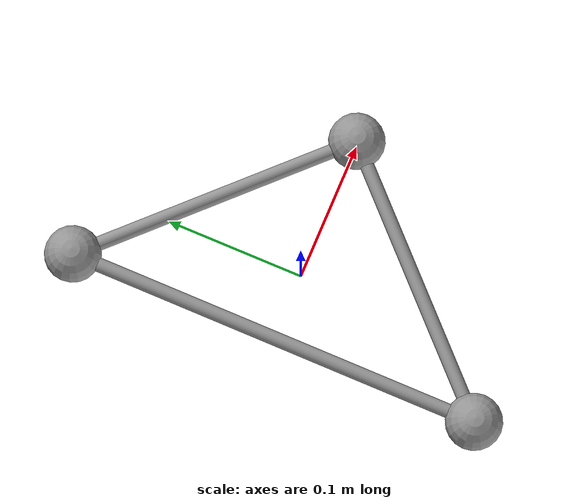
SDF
<?xml version="1.0" ?>

<sdf version="1.11">
  <model name="triball">
    <link name="link">
      <pose>0 0 0.02  0 0 0</pose>
      <inertial auto="true">
           <density>600</density>
      </inertial>
      <sensor name="imu" type="imu">
        <always_on>true</always_on>
      </sensor>

      <collision name="collision_a">
        <pose>0.09999999999999999 0 0  0 0 0</pose>
        <geometry>
          <sphere>
            <radius>0.02</radius>
          </sphere>
        </geometry>
        <surface>
          <friction>
            <ode>
              <mu>0.9</mu>
              <mu2>0.9</mu2>
              <fdir1>1 0 0</fdir1>
            </ode>
          </friction>
        </surface>
      </collision>
      <visual name="visual_a">
        <pose>0.09999999999999999 0 0  0 0 0</pose>
        <geometry>
          <sphere>
            <radius>0.02</radius>
          </sphere>
        </geometry>
        <material>
          <script>
            <uri>file://media/materials/scripts/gazebo.material</uri>
            <name>Gazebo/Grey</name>
          </script>
        </material>
      </visual>

      <collision name="collision_a_to_b">
        <pose>0.024999999999999998 0.07499999999999998 0.0  -1.5707963267948963 -0.7853981633974484 0.7853981633974483</pose>
        <geometry>
          <cylinder>
            <radius>0.005</radius>
            <length>0.21213203435596423</length>
          </cylinder>
        </geometry>
        <surface>
          <friction>
            <ode>
              <mu>0.9</mu>
              <mu2>0.9</mu2>
            </ode>
          </friction>
        </surface>
      </collision>
      <visual name="visual_a_to_b">
        <pose>0.024999999999999998 0.07499999999999998 0.0  -1.5707963267948963 -0.7853981633974484 0.7853981633974483</pose>
        <geometry>
          <cylinder>
            <radius>0.005</radius>
            <length>0.21213203435596423</length>
          </cylinder>
        </geometry>
        <material>
          <script>
            <uri>file://media/materials/scripts/gazebo.material</uri>
            <name>Gazebo/Grey</name>
          </script>
        </material>
      </visual>

      <collision name="collision_a_to_c">
        <pose>0.024999999999999998 -0.07499999999999998 0.0  1.5707963267948963 -0.7853981633974484 -0.7853981633974483</pose>
        <geometry>
          <cylinder>
            <radius>0.005</radius>
            <length>0.21213203435596423</length>
          </cylinder>
        </geometry>
        <surface>
          <friction>
            <ode>
              <mu>0.9</mu>
              <mu2>0.9</mu2>
            </ode>
          </friction>
        </surface>
      </collision>
      <visual name="visual_a_to_c">
        <pose>0.024999999999999998 -0.07499999999999998 0.0  1.5707963267948963 -0.7853981633974484 -0.7853981633974483</pose>
        <geometry>
          <cylinder>
            <radius>0.005</radius>
            <length>0.21213203435596423</length>
          </cylinder>
        </geometry>
        <material>
          <script>
            <uri>file://media/materials/scripts/gazebo.material</uri>
            <name>Gazebo/Grey</name>
          </script>
        </material>
      </visual>

      <collision name="collision_b">
        <pose>-0.049999999999999996 0.14999999999999997 0  0 0 0</pose>
        <geometry>
          <sphere>
            <radius>0.02</radius>
          </sphere>
        </geometry>
        <surface>
          <friction>
            <ode>
              <mu>0.9</mu>
              <mu2>0.9</mu2>
              <fdir1>1 0 0</fdir1>
            </ode>
          </friction>
        </surface>
      </collision>
      <visual name="visual_b">
        <pose>-0.049999999999999996 0.14999999999999997 0  0 0 0</pose>
        <geometry>
          <sphere>
            <radius>0.02</radius>
          </sphere>
        </geometry>
        <material>
          <script>
            <uri>file://media/materials/scripts/gazebo.material</uri>
            <name>Gazebo/Grey</name>
          </script>
        </material>
      </visual>

      <collision name="collision_b_to_c">
        <pose>-0.049999999999999996 0.0 0.0  1.5707963267948963 -0.0 0.0</pose>
        <geometry>
          <cylinder>
            <radius>0.005</radius>
            <length>0.29999999999999993</length>
          </cylinder>
        </geometry>
        <surface>
          <friction>
            <ode>
              <mu>0.9</mu>
              <mu2>0.9</mu2>
            </ode>
          </friction>
        </surface>
      </collision>
      <visual name="visual_b_to_c">
        <pose>-0.049999999999999996 0.0 0.0  1.5707963267948963 -0.0 0.0</pose>
        <geometry>
          <cylinder>
            <radius>0.005</radius>
            <length>0.29999999999999993</length>
          </cylinder>
        </geometry>
        <material>
          <script>
            <uri>file://media/materials/scripts/gazebo.material</uri>
            <name>Gazebo/Grey</name>
          </script>
        </material>
      </visual>

      <collision name="collision_c">
        <pose>-0.049999999999999996 -0.14999999999999997 0  0 0 0</pose>
        <geometry>
          <sphere>
            <radius>0.02</radius>
          </sphere>
        </geometry>
        <surface>
          <friction>
            <ode>
              <mu>0.9</mu>
              <mu2>0.9</mu2>
              <fdir1>1 0 0</fdir1>
            </ode>
          </friction>
        </surface>
      </collision>
      <visual name="visual_c">
        <pose>-0.049999999999999996 -0.14999999999999997 0  0 0 0</pose>
        <geometry>
          <sphere>
            <radius>0.02</radius>
          </sphere>
        </geometry>
        <material>
          <script>
            <uri>file://media/materials/scripts/gazebo.material</uri>
            <name>Gazebo/Grey</name>
          </script>
        </material>
      </visual>

    </link>
  </model>
</sdf>
